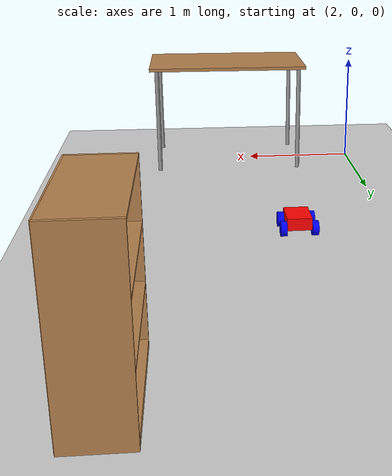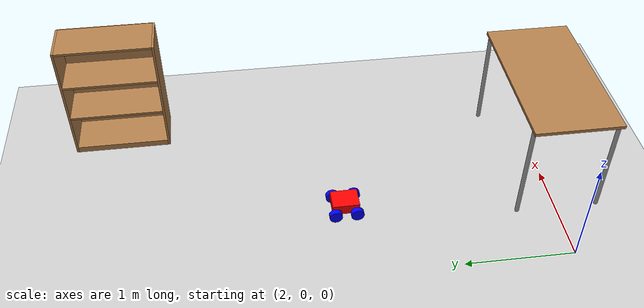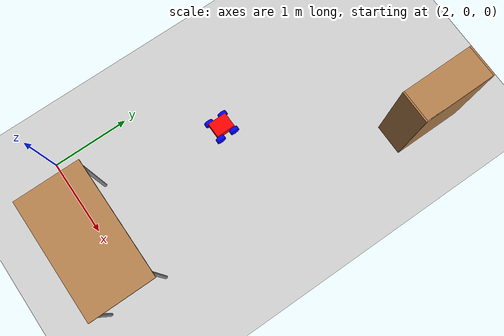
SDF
<sdf version="1.6">
 <world name="default">
  <model name="ground_plane">
   <static>1</static>
   <link name="link">
    <collision name="collision">
     <geometry><plane><normal>0 0 1</normal><size>100 100</size></plane></geometry>
     <surface><friction><ode><mu>100</mu><mu2>50</mu2></ode></friction></surface>
    </collision>
    <visual name="visual">
     <cast_shadows>0</cast_shadows>
     <geometry><plane><normal>0 0 1</normal><size>100 100</size></plane></geometry>
     <material>
      <script><uri>file://media/materials/scripts/gazebo.material</uri><name>Gazebo/Grey</name></script>
     </material>
    </visual>
   </link>
  </model>
  <model name="myRover">
   <link name="link_0">
    <pose>-0.384707 -0.007708 0.043333 0 -0 0</pose>
    <inertial>
     <mass>1</mass>
     <inertia>
      <ixx>0.166667</ixx>
      <ixy>0</ixy>
      <ixz>0</ixz>
      <iyy>0.166667</iyy>
      <iyz>0</iyz>
      <izz>0.166667</izz>
     </inertia>
     <pose>-0.02 0 0 0 -0 0</pose>
    </inertial>
    <visual name="visual">
     <geometry><box><size>0.2 0.25 0.1</size></box></geometry>
     <material>
      <lighting>1</lighting>
      <script><uri>file://media/materials/scripts/gazebo.material</uri><name>Gazebo/Grey</name></script>
      <shader type="pixel"><normal_map>__default__</normal_map></shader>
      <ambient>1 0 0 1</ambient>
      <diffuse>0.7 0.7 0.7 1</diffuse>
      <specular>0.01 0.01 0.01 1</specular>
      <emissive>0 0 0 1</emissive>
     </material>
    </visual>
    <collision name="collision">
     <geometry><box><size>0.2 0.25 0.1</size></box></geometry>
     <surface>
      <friction>
       <ode><mu>1</mu><mu2>1</mu2><fdir1>0 0 0</fdir1><slip1>0</slip1><slip2>0</slip2></ode>
       <torsional>
        <coefficient>1</coefficient>
        <patch_radius>0</patch_radius>
        <surface_radius>0</surface_radius>
        <use_patch_radius>1</use_patch_radius>
        <ode><slip>0</slip></ode>
       </torsional>
      </friction>
      <bounce><restitution_coefficient>0</restitution_coefficient><threshold>1e+06</threshold></bounce>
      <contact>
       <collide_without_contact>0</collide_without_contact>
       <collide_without_contact_bitmask>1</collide_without_contact_bitmask>
       <collide_bitmask>1</collide_bitmask>
       <ode>
        <soft_cfm>0</soft_cfm>
        <soft_erp>0.2</soft_erp>
        <kp>1e+13</kp>
        <kd>1</kd>
        <max_vel>0.01</max_vel>
        <min_depth>0</min_depth>
       </ode>
       <bullet>
        <split_impulse>1</split_impulse>
        <split_impulse_penetration_threshold>-0.01</split_impulse_penetration_threshold>
        <soft_cfm>0</soft_cfm>
        <soft_erp>0.2</soft_erp>
        <kp>1e+13</kp>
        <kd>1</kd>
       </bullet>
      </contact>
     </surface>
    </collision>
   </link>
   <link name="link_1">
    <pose>-0.259707 -0.107708 0.003333 0 1.5707 0</pose>
    <inertial>
     <mass>1</mass>
     <inertia><ixx>0.145833</ixx><ixy>0</ixy><ixz>0</ixz><iyy>0.145833</iyy><iyz>0</iyz><izz>0.125</izz></inertia>
    </inertial>
    <visual name="visual">
     <geometry><cylinder><radius>0.06</radius><length>0.05</length></cylinder></geometry>
     <material>
      <lighting>1</lighting>
      <script><uri>file://media/materials/scripts/gazebo.material</uri><name>Gazebo/Grey</name></script>
      <shader type="pixel"><normal_map>__default__</normal_map></shader>
      <ambient>0 0 1 1</ambient>
      <diffuse>0.7 0.7 0.7 1</diffuse>
      <specular>0.01 0.01 0.01 1</specular>
      <emissive>0 0 0 1</emissive>
     </material>
    </visual>
    <collision name="collision">
     <geometry><cylinder><radius>0.06</radius><length>0.05</length></cylinder></geometry>
     <surface>
      <friction>
       <ode><mu>1</mu><mu2>1</mu2><fdir1>0 0 0</fdir1><slip1>0</slip1><slip2>0</slip2></ode>
       <torsional>
        <coefficient>1</coefficient>
        <patch_radius>0</patch_radius>
        <surface_radius>0</surface_radius>
        <use_patch_radius>1</use_patch_radius>
        <ode><slip>0</slip></ode>
       </torsional>
      </friction>
      <bounce><restitution_coefficient>0</restitution_coefficient><threshold>1e+06</threshold></bounce>
      <contact>
       <collide_without_contact>0</collide_without_contact>
       <collide_without_contact_bitmask>1</collide_without_contact_bitmask>
       <collide_bitmask>1</collide_bitmask>
       <ode>
        <soft_cfm>0</soft_cfm>
        <soft_erp>0.2</soft_erp>
        <kp>1e+13</kp>
        <kd>1</kd>
        <max_vel>0.01</max_vel>
        <min_depth>0</min_depth>
       </ode>
       <bullet>
        <split_impulse>1</split_impulse>
        <split_impulse_penetration_threshold>-0.01</split_impulse_penetration_threshold>
        <soft_cfm>0</soft_cfm>
        <soft_erp>0.2</soft_erp>
        <kp>1e+13</kp>
        <kd>1</kd>
       </bullet>
      </contact>
     </surface>
    </collision>
   </link>
   <link name="link_1_clone">
    <pose>-0.259707 0.092292 0.003333 0 1.5707 0</pose>
    <inertial>
     <mass>1</mass>
     <inertia><ixx>0.145833</ixx><ixy>0</ixy><ixz>0</ixz><iyy>0.145833</iyy><iyz>0</iyz><izz>0.125</izz></inertia>
    </inertial>
    <visual name="visual">
     <geometry><cylinder><radius>0.06</radius><length>0.05</length></cylinder></geometry>
     <material>
      <lighting>1</lighting>
      <script><uri>file://media/materials/scripts/gazebo.material</uri><name>Gazebo/Grey</name></script>
      <shader type="pixel"><normal_map>__default__</normal_map></shader>
      <ambient>0 0 1 1</ambient>
      <diffuse>0.7 0.7 0.7 1</diffuse>
      <specular>0.01 0.01 0.01 1</specular>
      <emissive>0 0 0 1</emissive>
     </material>
    </visual>
    <collision name="collision">
     <geometry><cylinder><radius>0.06</radius><length>0.05</length></cylinder></geometry>
     <surface>
      <friction>
       <ode><mu>1</mu><mu2>1</mu2><fdir1>0 0 0</fdir1><slip1>0</slip1><slip2>0</slip2></ode>
       <torsional>
        <coefficient>1</coefficient>
        <patch_radius>0</patch_radius>
        <surface_radius>0</surface_radius>
        <use_patch_radius>1</use_patch_radius>
        <ode><slip>0</slip></ode>
       </torsional>
      </friction>
      <bounce><restitution_coefficient>0</restitution_coefficient><threshold>1e+06</threshold></bounce>
      <contact>
       <collide_without_contact>0</collide_without_contact>
       <collide_without_contact_bitmask>1</collide_without_contact_bitmask>
       <collide_bitmask>1</collide_bitmask>
       <ode>
        <soft_cfm>0</soft_cfm>
        <soft_erp>0.2</soft_erp>
        <kp>1e+13</kp>
        <kd>1</kd>
        <max_vel>0.01</max_vel>
        <min_depth>0</min_depth>
       </ode>
       <bullet>
        <split_impulse>1</split_impulse>
        <split_impulse_penetration_threshold>-0.01</split_impulse_penetration_threshold>
        <soft_cfm>0</soft_cfm>
        <soft_erp>0.2</soft_erp>
        <kp>1e+13</kp>
        <kd>1</kd>
       </bullet>
      </contact>
     </surface>
    </collision>
   </link>
   <link name="link_1_clone_0">
    <pose>-0.509707 -0.107708 0.003333 0 1.5707 0</pose>
    <inertial>
     <mass>1</mass>
     <inertia><ixx>0.145833</ixx><ixy>0</ixy><ixz>0</ixz><iyy>0.145833</iyy><iyz>0</iyz><izz>0.125</izz></inertia>
    </inertial>
    <visual name="visual">
     <geometry><cylinder><radius>0.06</radius><length>0.05</length></cylinder></geometry>
     <material>
      <lighting>1</lighting>
      <script><uri>file://media/materials/scripts/gazebo.material</uri><name>Gazebo/Grey</name></script>
      <shader type="pixel"><normal_map>__default__</normal_map></shader>
      <ambient>0 0 1 1</ambient>
      <diffuse>0.7 0.7 0.7 1</diffuse>
      <specular>0.01 0.01 0.01 1</specular>
      <emissive>0 0 0 1</emissive>
     </material>
    </visual>
    <collision name="collision">
     <geometry><cylinder><radius>0.06</radius><length>0.05</length></cylinder></geometry>
     <surface>
      <friction>
       <ode><mu>1</mu><mu2>1</mu2><fdir1>0 0 0</fdir1><slip1>0</slip1><slip2>0</slip2></ode>
       <torsional>
        <coefficient>1</coefficient>
        <patch_radius>0</patch_radius>
        <surface_radius>0</surface_radius>
        <use_patch_radius>1</use_patch_radius>
        <ode><slip>0</slip></ode>
       </torsional>
      </friction>
      <bounce><restitution_coefficient>0</restitution_coefficient><threshold>1e+06</threshold></bounce>
      <contact>
       <collide_without_contact>0</collide_without_contact>
       <collide_without_contact_bitmask>1</collide_without_contact_bitmask>
       <collide_bitmask>1</collide_bitmask>
       <ode>
        <soft_cfm>0</soft_cfm>
        <soft_erp>0.2</soft_erp>
        <kp>1e+13</kp>
        <kd>1</kd>
        <max_vel>0.01</max_vel>
        <min_depth>0</min_depth>
       </ode>
       <bullet>
        <split_impulse>1</split_impulse>
        <split_impulse_penetration_threshold>-0.01</split_impulse_penetration_threshold>
        <soft_cfm>0</soft_cfm>
        <soft_erp>0.2</soft_erp>
        <kp>1e+13</kp>
        <kd>1</kd>
       </bullet>
      </contact>
     </surface>
    </collision>
   </link>
   <link name="link_1_clone_1">
    <pose>-0.509707 0.092292 0.003333 0 1.5707 0</pose>
    <inertial>
     <mass>1</mass>
     <inertia><ixx>0.145833</ixx><ixy>0</ixy><ixz>0</ixz><iyy>0.145833</iyy><iyz>0</iyz><izz>0.125</izz></inertia>
    </inertial>
    <visual name="visual">
     <geometry><cylinder><radius>0.06</radius><length>0.05</length></cylinder></geometry>
     <material>
      <lighting>1</lighting>
      <script><uri>file://media/materials/scripts/gazebo.material</uri><name>Gazebo/Grey</name></script>
      <shader type="pixel"><normal_map>__default__</normal_map></shader>
      <ambient>0 0 1 1</ambient>
      <diffuse>0.7 0.7 0.7 1</diffuse>
      <specular>0.01 0.01 0.01 1</specular>
      <emissive>0 0 0 1</emissive>
     </material>
    </visual>
    <collision name="collision">
     <geometry><cylinder><radius>0.06</radius><length>0.05</length></cylinder></geometry>
     <surface>
      <friction>
       <ode><mu>1</mu><mu2>1</mu2><fdir1>0 0 0</fdir1><slip1>0</slip1><slip2>0</slip2></ode>
       <torsional>
        <coefficient>1</coefficient>
        <patch_radius>0</patch_radius>
        <surface_radius>0</surface_radius>
        <use_patch_radius>1</use_patch_radius>
        <ode><slip>0</slip></ode>
       </torsional>
      </friction>
      <bounce><restitution_coefficient>0</restitution_coefficient><threshold>1e+06</threshold></bounce>
      <contact>
       <collide_without_contact>0</collide_without_contact>
       <collide_without_contact_bitmask>1</collide_without_contact_bitmask>
       <collide_bitmask>1</collide_bitmask>
       <ode>
        <soft_cfm>0</soft_cfm>
        <soft_erp>0.2</soft_erp>
        <kp>1e+13</kp>
        <kd>1</kd>
        <max_vel>0.01</max_vel>
        <min_depth>0</min_depth>
       </ode>
       <bullet>
        <split_impulse>1</split_impulse>
        <split_impulse_penetration_threshold>-0.01</split_impulse_penetration_threshold>
        <soft_cfm>0</soft_cfm>
        <soft_erp>0.2</soft_erp>
        <kp>1e+13</kp>
        <kd>1</kd>
       </bullet>
      </contact>
     </surface>
    </collision>
   </link>
   <model name="robot"><static>0</static><pose>1.92353 0.038537 -0.056667 0 -0 0</pose></model>
   <joint name="link_0_JOINT_0" type="revolute">
    <parent>link_0</parent>
    <child>link_1</child>
    <axis>
     <xyz>0 0 1</xyz>
     <use_parent_model_frame>0</use_parent_model_frame>
     <limit>
      <lower>-1.79769e+308</lower>
      <upper>1.79769e+308</upper>
      <effort>-1</effort>
      <velocity>-1</velocity>
     </limit>
     <dynamics>
      <spring_reference>0</spring_reference>
      <spring_stiffness>0</spring_stiffness>
      <damping>0</damping>
     </dynamics>
    </axis>
    <physics>
     <ode><limit><cfm>0</cfm><erp>0.2</erp></limit><suspension><cfm>0</cfm><erp>0.2</erp></suspension></ode>
    </physics>
   </joint>
   <joint name="link_0_JOINT_1" type="revolute">
    <parent>link_0</parent>
    <child>link_1_clone</child>
    <axis>
     <xyz>0 0 1</xyz>
     <use_parent_model_frame>0</use_parent_model_frame>
     <limit>
      <lower>-1.79769e+308</lower>
      <upper>1.79769e+308</upper>
      <effort>-1</effort>
      <velocity>-1</velocity>
     </limit>
     <dynamics>
      <spring_reference>0</spring_reference>
      <spring_stiffness>0</spring_stiffness>
      <damping>0</damping>
     </dynamics>
    </axis>
    <physics>
     <ode><limit><cfm>0</cfm><erp>0.2</erp></limit><suspension><cfm>0</cfm><erp>0.2</erp></suspension></ode>
    </physics>
   </joint>
   <joint name="link_0_JOINT_2" type="revolute">
    <parent>link_0</parent>
    <child>link_1_clone_1</child>
    <axis>
     <xyz>0 0 1</xyz>
     <use_parent_model_frame>0</use_parent_model_frame>
     <limit>
      <lower>-1.79769e+308</lower>
      <upper>1.79769e+308</upper>
      <effort>-1</effort>
      <velocity>-1</velocity>
     </limit>
     <dynamics>
      <spring_reference>0</spring_reference>
      <spring_stiffness>0</spring_stiffness>
      <damping>0</damping>
     </dynamics>
    </axis>
    <physics>
     <ode><limit><cfm>0</cfm><erp>0.2</erp></limit><suspension><cfm>0</cfm><erp>0.2</erp></suspension></ode>
    </physics>
   </joint>
   <joint name="link_0_JOINT_3" type="revolute">
    <parent>link_0</parent>
    <child>link_1_clone_0</child>
    <axis>
     <xyz>0 0 1</xyz>
     <use_parent_model_frame>0</use_parent_model_frame>
     <limit>
      <lower>-1.79769e+308</lower>
      <upper>1.79769e+308</upper>
      <effort>-1</effort>
      <velocity>-1</velocity>
     </limit>
     <dynamics>
      <spring_reference>0</spring_reference>
      <spring_stiffness>0</spring_stiffness>
      <damping>0</damping>
     </dynamics>
    </axis>
    <physics>
     <ode><limit><cfm>0</cfm><erp>0.2</erp></limit><suspension><cfm>0</cfm><erp>0.2</erp></suspension></ode>
    </physics>
   </joint>
   <static>0</static>
   <pose>3.16142 1.95904 0.056666 -1.3e-05 5e-06 0.011403</pose>
   <plugin name="model_push" filename="libmodel_push.so"/>
  </model>
  <model name="bookshelf">
   <static>1</static>
   <link name="link">
    <inertial><mass>1</mass></inertial>
    <collision name="back">
     <pose>0 0.005 0.6 0 -0 0</pose>
     <geometry><box><size>0.9 0.01 1.2</size></box></geometry>
    </collision>
    <visual name="visual1">
     <pose>0 0.005 0.6 0 -0 0</pose>
     <geometry><box><size>0.9 0.01 1.2</size></box></geometry>
     <material>
      <script><uri>file://media/materials/scripts/gazebo.material</uri><name>Gazebo/Wood</name></script>
     </material>
    </visual>
    <collision name="left_side">
     <pose>0.45 -0.195 0.6 0 -0 0</pose>
     <geometry><box><size>0.02 0.4 1.2</size></box></geometry>
    </collision>
    <visual name="visual2">
     <pose>0.45 -0.195 0.6 0 -0 0</pose>
     <geometry><box><size>0.02 0.4 1.2</size></box></geometry>
     <material>
      <script><uri>file://media/materials/scripts/gazebo.material</uri><name>Gazebo/Wood</name></script>
     </material>
    </visual>
    <collision name="right_side">
     <pose>-0.45 -0.195 0.6 0 -0 0</pose>
     <geometry><box><size>0.02 0.4 1.2</size></box></geometry>
    </collision>
    <visual name="visual3">
     <pose>-0.45 -0.195 0.6 0 -0 0</pose>
     <geometry><box><size>0.02 0.4 1.2</size></box></geometry>
     <material>
      <script><uri>file://media/materials/scripts/gazebo.material</uri><name>Gazebo/Wood</name></script>
     </material>
    </visual>
    <collision name="bottom">
     <pose>0 -0.195 0.03 0 -0 0</pose>
     <geometry><box><size>0.88 0.4 0.06</size></box></geometry>
    </collision>
    <visual name="visual4">
     <pose>0 -0.195 0.03 0 -0 0</pose>
     <geometry><box><size>0.88 0.4 0.06</size></box></geometry>
     <material>
      <script><uri>file://media/materials/scripts/gazebo.material</uri><name>Gazebo/Wood</name></script>
     </material>
    </visual>
    <collision name="top">
     <pose>0 -0.195 1.19 0 -0 0</pose>
     <geometry><box><size>0.88 0.4 0.02</size></box></geometry>
    </collision>
    <visual name="visual5">
     <pose>0 -0.195 1.19 0 -0 0</pose>
     <geometry><box><size>0.88 0.4 0.02</size></box></geometry>
     <material>
      <script><uri>file://media/materials/scripts/gazebo.material</uri><name>Gazebo/Wood</name></script>
     </material>
    </visual>
    <collision name="low_shelf">
     <pose>0 -0.195 0.43 0 -0 0</pose>
     <geometry><box><size>0.88 0.4 0.02</size></box></geometry>
    </collision>
    <visual name="visual6">
     <pose>0 -0.195 0.43 0 -0 0</pose>
     <geometry><box><size>0.88 0.4 0.02</size></box></geometry>
     <material>
      <script><uri>file://media/materials/scripts/gazebo.material</uri><name>Gazebo/Wood</name></script>
     </material>
    </visual>
    <collision name="high_shelf">
     <pose>0 -0.195 0.8 0 -0 0</pose>
     <geometry><box><size>0.88 0.4 0.02</size></box></geometry>
    </collision>
    <visual name="visual7">
     <pose>0 -0.195 0.8 0 -0 0</pose>
     <geometry><box><size>0.88 0.4 0.02</size></box></geometry>
     <material>
      <script><uri>file://media/materials/scripts/gazebo.material</uri><name>Gazebo/Wood</name></script>
     </material>
    </visual>
   </link>
   <pose>4.27753 4.02419 0 0 0 -1.56899</pose>
  </model>
  <model name="table">
   <static>1</static>
   <link name="link">
    <collision name="surface">
     <pose>0 0 1 0 -0 0</pose>
     <geometry><box><size>1.5 0.8 0.03</size></box></geometry>
     <surface><friction><ode><mu>0.6</mu><mu2>0.6</mu2></ode></friction></surface>
    </collision>
    <visual name="visual1">
     <pose>0 0 1 0 -0 0</pose>
     <geometry><box><size>1.5 0.8 0.03</size></box></geometry>
     <material>
      <script><uri>file://media/materials/scripts/gazebo.material</uri><name>Gazebo/Wood</name></script>
     </material>
    </visual>
    <collision name="front_left_leg">
     <pose>0.68 0.38 0.5 0 -0 0</pose>
     <geometry><cylinder><radius>0.02</radius><length>1</length></cylinder></geometry>
    </collision>
    <visual name="front_left_leg">
     <pose>0.68 0.38 0.5 0 -0 0</pose>
     <geometry><cylinder><radius>0.02</radius><length>1</length></cylinder></geometry>
     <material>
      <script><uri>file://media/materials/scripts/gazebo.material</uri><name>Gazebo/Grey</name></script>
     </material>
    </visual>
    <collision name="front_right_leg">
     <pose>0.68 -0.38 0.5 0 -0 0</pose>
     <geometry><cylinder><radius>0.02</radius><length>1</length></cylinder></geometry>
    </collision>
    <visual name="front_right_leg">
     <pose>0.68 -0.38 0.5 0 -0 0</pose>
     <geometry><cylinder><radius>0.02</radius><length>1</length></cylinder></geometry>
     <material>
      <script><uri>file://media/materials/scripts/gazebo.material</uri><name>Gazebo/Grey</name></script>
     </material>
    </visual>
    <collision name="back_right_leg">
     <pose>-0.68 -0.38 0.5 0 -0 0</pose>
     <geometry><cylinder><radius>0.02</radius><length>1</length></cylinder></geometry>
    </collision>
    <visual name="back_right_leg">
     <pose>-0.68 -0.38 0.5 0 -0 0</pose>
     <geometry><cylinder><radius>0.02</radius><length>1</length></cylinder></geometry>
     <material>
      <script><uri>file://media/materials/scripts/gazebo.material</uri><name>Gazebo/Grey</name></script>
     </material>
    </visual>
    <collision name="back_left_leg">
     <pose>-0.68 0.38 0.5 0 -0 0</pose>
     <geometry><cylinder><radius>0.02</radius><length>1</length></cylinder></geometry>
    </collision>
    <visual name="back_left_leg">
     <pose>-0.68 0.38 0.5 0 -0 0</pose>
     <geometry><cylinder><radius>0.02</radius><length>1</length></cylinder></geometry>
     <material>
      <script><uri>file://media/materials/scripts/gazebo.material</uri><name>Gazebo/Grey</name></script>
     </material>
    </visual>
   </link>
   <pose>3.24114 -0.015086 0 0 -0 0</pose>
  </model>
 </world>
</sdf>
